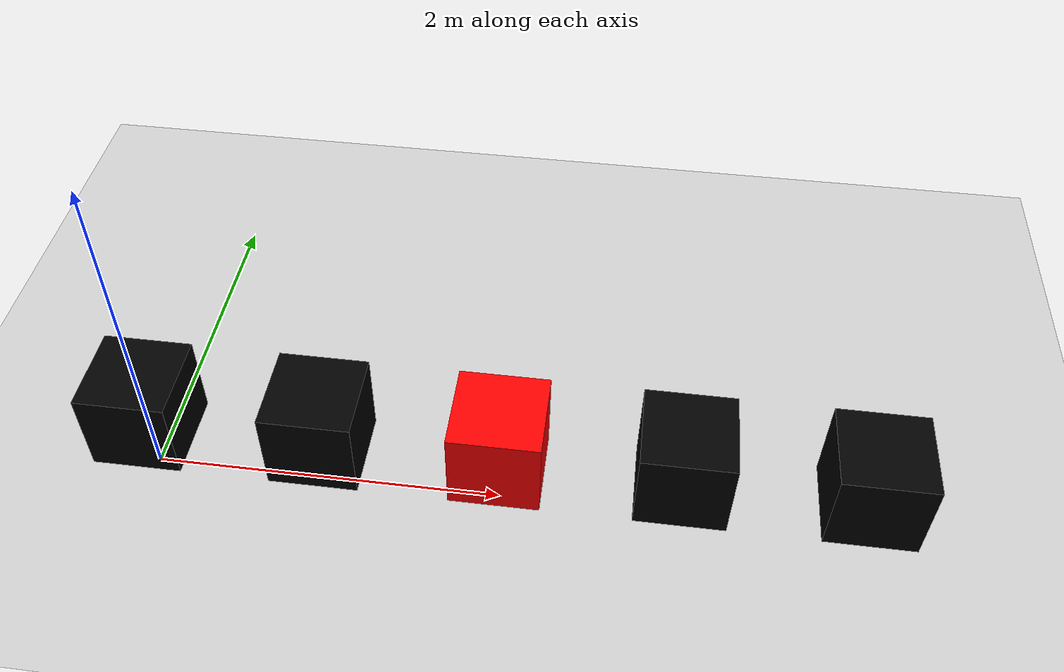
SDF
<?xml version="1.0" ?>
<sdf version="1.5">
  <world name="default">
    <scene>
      <ambient>0.7 0.7 0.7 1</ambient>
      <background>0.1 0.1 0.1 1</background>
    </scene>

    <include>
      <uri>model://sun</uri>
    </include>

    <include>
      <uri>model://ground_plane</uri>
    </include>

    <model name="ColorModel">
      <static>true</static>

      <link name="link1">
        <pose>0 0 0.5 0 0 0</pose>
        <collision name="body_collision">
          <geometry>
            <box>
              <size>0.5 0.5 0.5</size>
            </box>
          </geometry>
        </collision>
        <visual name="body_visual">
          <material>
            <ambient>0 0 0 1</ambient>
            <diffuse>0 0 0 1</diffuse>
            <specular>0 0 0 1</specular>
            <emissive>0 0 0 1</emissive>
            </material>
          <geometry>
            <box>
              <size>0.5 0.5 0.5</size>
            </box>
          </geometry>
        </visual>
      </link>

      <link name="link2">
        <pose>1 0 0.5 0 0 0</pose>
        <collision name="body_collision">
          <geometry>
            <box>
              <size>0.5 0.5 0.5</size>
            </box>
          </geometry>
        </collision>
        <visual name="body_visual">
          <material>
            <ambient>1 0 0 1</ambient>
            <diffuse>0 0 0 1</diffuse>
            <specular>0 0 0 1</specular>
            <emissive>0 0 0 1</emissive>
            </material>
          <geometry>
            <box>
              <size>0.5 0.5 0.5</size>
            </box>
          </geometry>
        </visual>
      </link>

      <link name="link3">
        <pose>2 0 0.5 0 0 0</pose>
        <collision name="body_collision">
          <geometry>
            <box>
              <size>0.5 0.5 0.5</size>
            </box>
          </geometry>
        </collision>
        <visual name="body_visual">
          <material>
            <ambient>0 0 0 1</ambient>
            <diffuse>1 0 0 1</diffuse>
            <specular>0 0 0 1</specular>
            <emissive>0 0 0 1</emissive>
            </material>
          <geometry>
            <box>
              <size>0.5 0.5 0.5</size>
            </box>
          </geometry>
        </visual>
      </link>

      <link name="link4">
        <pose>3 0 0.5 0 0 0</pose>
        <collision name="body_collision">
          <geometry>
            <box>
              <size>0.5 0.5 0.5</size>
            </box>
          </geometry>
        </collision>
        <visual name="body_visual">
          <material>
            <ambient>0 0 0 1</ambient>
            <diffuse>0 0 0 1</diffuse>
            <specular>1 0 0 1</specular>
            <emissive>0 0 0 1</emissive>
            </material>
          <geometry>
            <box>
              <size>0.5 0.5 0.5</size>
            </box>
          </geometry>
        </visual>
      </link>

      <link name="link5">
        <pose>4 0 0.5 0 0 0</pose>
        <collision name="body_collision">
          <geometry>
            <box>
              <size>0.5 0.5 0.5</size>
            </box>
          </geometry>
        </collision>
        <visual name="body_visual">
          <material>
            <ambient>0 0 0 1</ambient>
            <diffuse>0 0 0 1</diffuse>
            <specular>0 0 0 1</specular>
            <emissive>1 0 0 1</emissive>
            </material>
          <geometry>
            <box>
              <size>0.5 0.5 0.5</size>
            </box>
          </geometry>
        </visual>
      </link>
    </model>
  </world>
</sdf>
